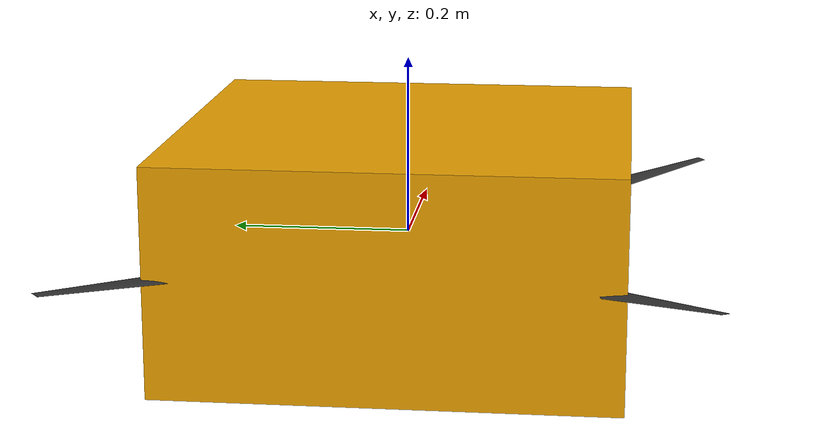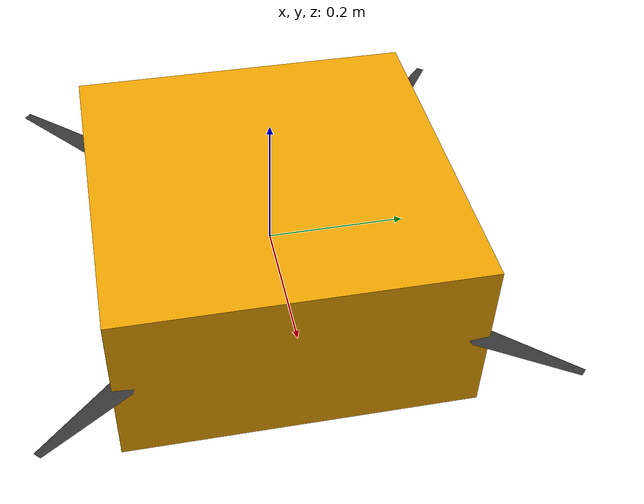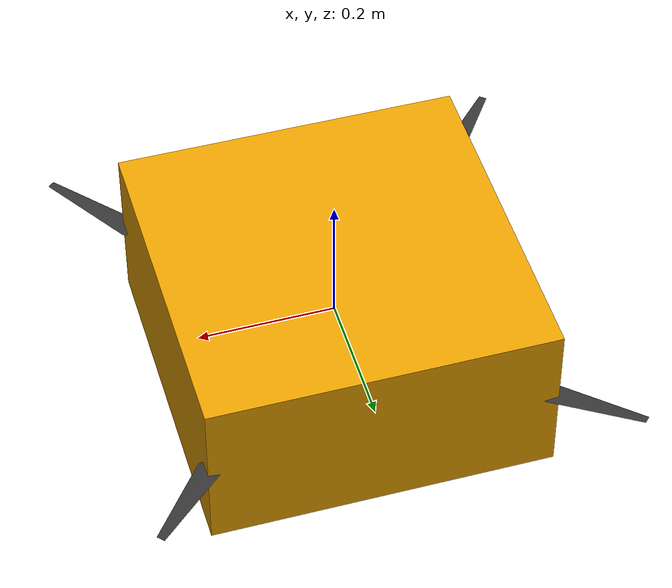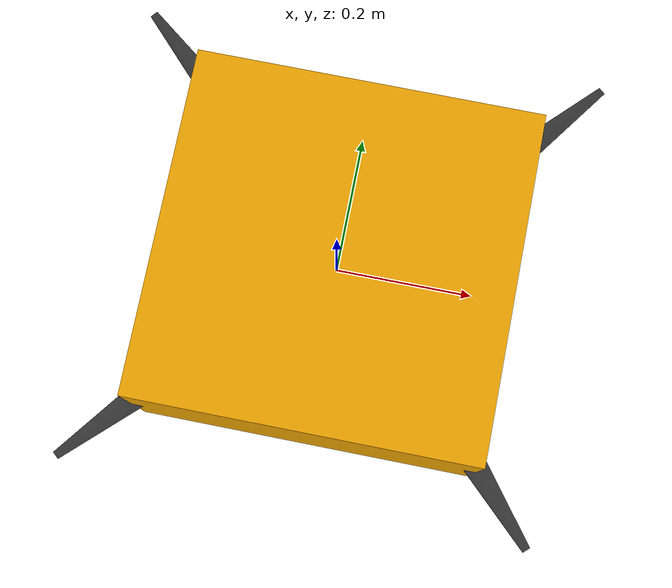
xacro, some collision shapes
<?xml version='1.0'?>

<!-- Description for the Avular Vertex One. -->
<robot name="avular_vertex_one" xmlns:xacro="http://ros.org/wiki/xacro">

  <!-- Per-robot link/joint prefix (empty = none). -->
  <xacro:arg name="prefix" default=""/>
  <xacro:property name="prefix" value="$(arg prefix)"/>
  <xacro:property name="P" value="${prefix + ('_' if prefix else '')}"/>

  <!-- Rotor link: identical inertial/collision for all four rotors; visual
       orientation and prop mesh vary per rotor. -->
  <xacro:macro name="rotor_link" params="name visual_rpy mesh">
    <link name="${P}${name}">
      <inertial>
        <mass value="0.005"/>
        <inertia ixx="9.75e-07" ixy="0.0" ixz="0.0" iyy="4.17041e-05" iyz="0.0" izz="4.26041e-05"/>
      </inertial>
      <collision name="${name}_collision">
        <origin xyz="0 0 0" rpy="0 0 0"/>
        <geometry>
          <cylinder length="0.005" radius="0.1"/>
        </geometry>
      </collision>
      <visual name="${name}_visual">
        <origin xyz="0 0 0" rpy="${visual_rpy}"/>
        <geometry>
          <mesh filename="package://vertex_one_description/urdf/meshes/${mesh}"
            scale="0.001 0.001 0.001" />
        </geometry>
      </visual>
    </link>
  </xacro:macro>

  <xacro:macro name="rotor_joint" params="name x y">
    <joint type="continuous" name="${P}${name}_joint">
      <origin xyz="${x} ${y} 0" rpy="0 0 0"/>
      <child link="${P}${name}"/>
      <parent link="${P}base_link"/>
      <axis xyz="0 0 1"/>
      <limit effort="1000" velocity="1000"/>
    </joint>
  </xacro:macro>

  <xacro:macro name="sensor_link" params="name">
    <link name="${P}${name}">
      <inertial>
        <mass value="0.001"/>
        <inertia ixx="0.001" ixy="0.0" ixz="0.0" iyy="0.001" iyz="0.0" izz="0.001"/>
      </inertial>
    </link>
  </xacro:macro>

  <xacro:macro name="fixed_joint" params="name xyz">
    <joint type="fixed" name="${P}${name}_joint">
      <origin xyz="${xyz}" rpy="0 0 0"/>
      <child link="${P}${name}"/>
      <parent link="${P}base_link"/>
    </joint>
  </xacro:macro>
  <link name='${P}base_link'>
    <inertial>
      <mass value="1.5"/>
      <inertia ixx="0.0347563" ixy="0.0" ixz="0.0" iyy="0.07" iyz="0.0" izz="0.0977"/>
    </inertial>
    <collision name='collision'>
      <origin xyz="0 0 0" rpy="0 0 0"/>
      <geometry>
        <box size="0.5 0.5 0.25"/>
      </geometry>
    </collision>
    <visual name='visual'>
      <origin xyz="0 0 0" rpy="-1.5707964 0 1.5707964"/>
      <geometry>
        <mesh filename="package://vertex_one_description/urdf/meshes/body.dae"
          scale="0.001 0.001 0.001" />
      </geometry>
    </visual>
  </link>

  <xacro:rotor_link name="rotor_FL" visual_rpy="-1.5707964 0 0"         mesh="prop_l.dae"/>
  <xacro:rotor_link name="rotor_FR" visual_rpy="-1.5707964 0 3.1415926" mesh="prop_r.dae"/>
  <xacro:rotor_link name="rotor_RL" visual_rpy="-1.5707964 0 1.570796"  mesh="prop_l.dae"/>
  <xacro:rotor_link name="rotor_RR" visual_rpy="-1.5707964 0 3.1415926" mesh="prop_l.dae"/>

  <xacro:sensor_link name="imu_link"/>
  <xacro:sensor_link name="gnss_link"/>

  <!-- Symmetric X-quad layout -->
  <xacro:rotor_joint name="rotor_FL" x="0.20613"  y="0.20047"/>
  <xacro:rotor_joint name="rotor_FR" x="0.20613"  y="-0.20047"/>
  <xacro:rotor_joint name="rotor_RL" x="-0.20613" y="0.20047"/>
  <xacro:rotor_joint name="rotor_RR" x="-0.20613" y="-0.20047"/>

  <xacro:fixed_joint name="imu_link"  xyz="0 0 0"/>
  <xacro:fixed_joint name="gnss_link" xyz="-0.17 0.22 0"/>

</robot>
